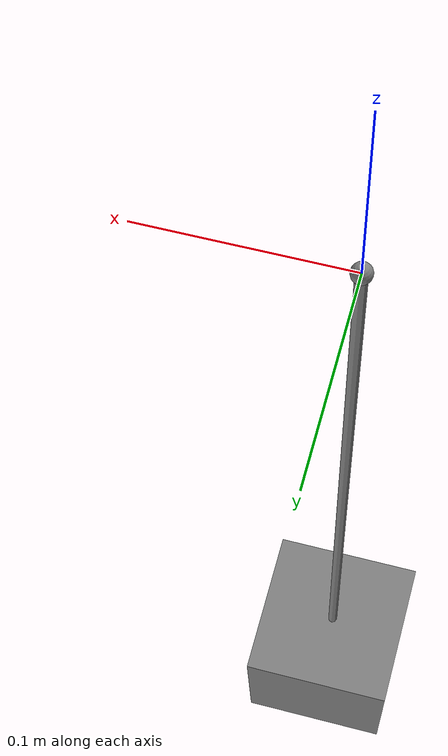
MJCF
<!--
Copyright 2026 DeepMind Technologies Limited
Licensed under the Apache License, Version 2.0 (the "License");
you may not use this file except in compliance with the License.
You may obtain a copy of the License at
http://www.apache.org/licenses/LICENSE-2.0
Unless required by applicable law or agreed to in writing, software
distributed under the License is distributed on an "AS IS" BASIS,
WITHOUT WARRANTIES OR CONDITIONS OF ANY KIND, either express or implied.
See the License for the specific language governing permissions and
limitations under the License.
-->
<mujoco>
  <option gravity="0 0 -1"/>

  <worldbody>
    <body name="fixed">
      <body name="fixedend">
        <site name="fixedend"/>
      </body>
    </body>
    <body name="mass" pos="0 0 -0.5">
      <freejoint/>
      <geom type="box" size="0.05 0.05 0.05" mass="1"/>
      <site name="mass"/>
      <body name="massend">
        <site name="massend"/>
      </body>
    </body>
  </worldbody>

  <tendon>
    <spatial name="rope" springlength="0.5" stiffness="100" damping="20">
      <site site="fixedend"/>
      <site site="massend"/>
    </spatial>
  </tendon>

  <sensor>
    <force site="fixedend" user="0 0 1"/>
    <force site="massend" user="0 0 -1"/>
    <force site="mass" user="0 0 0"/>
  </sensor>
</mujoco>
